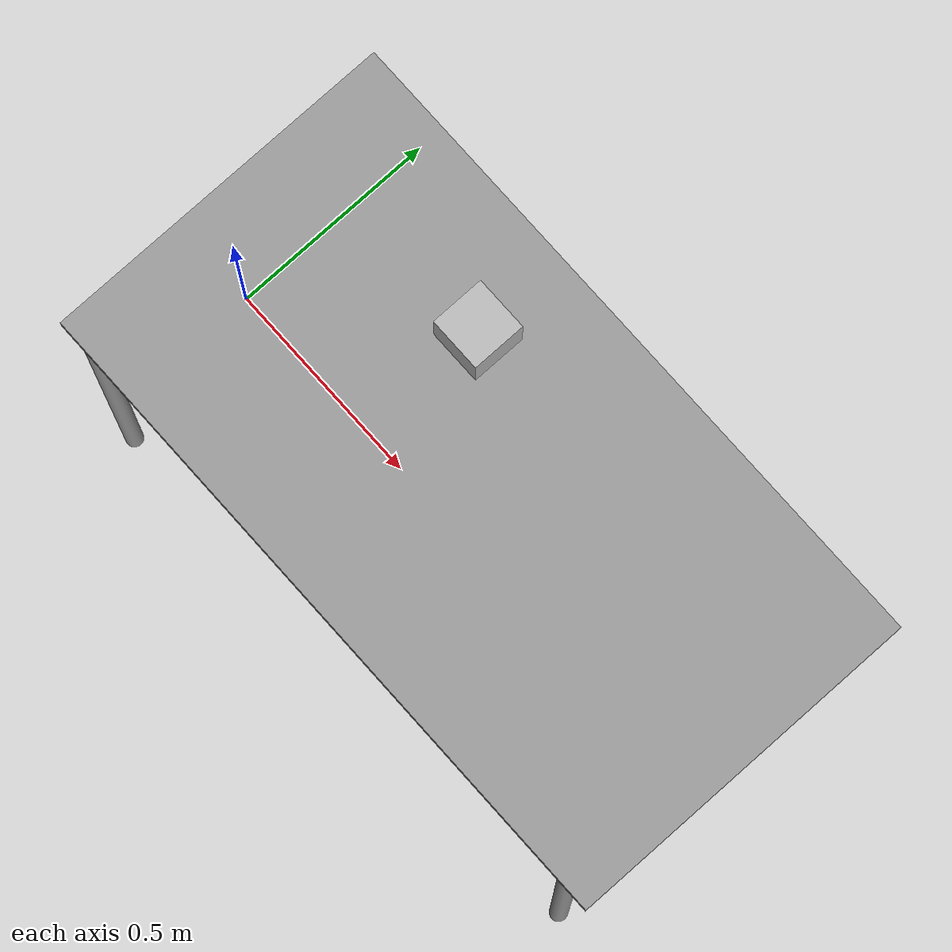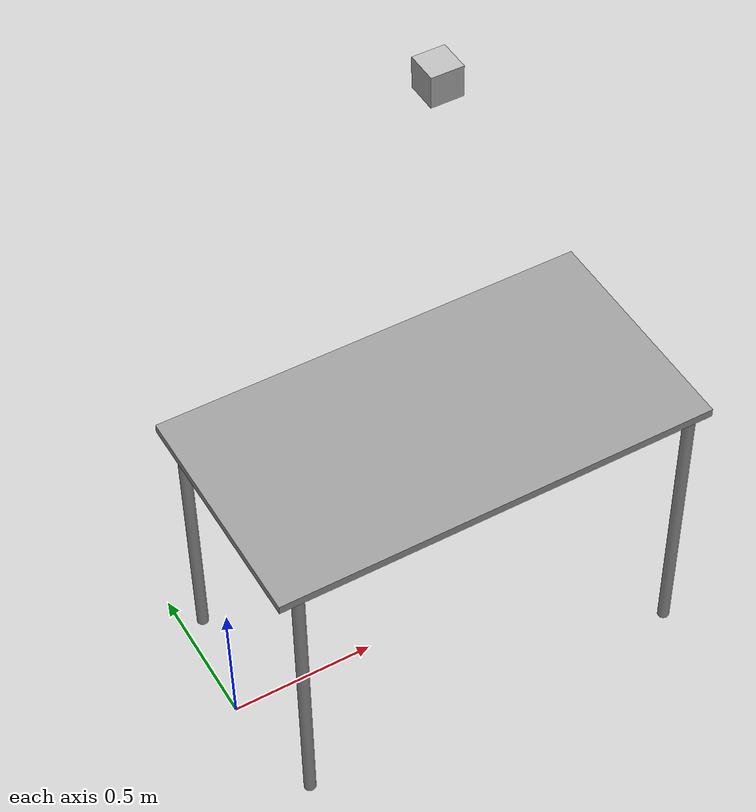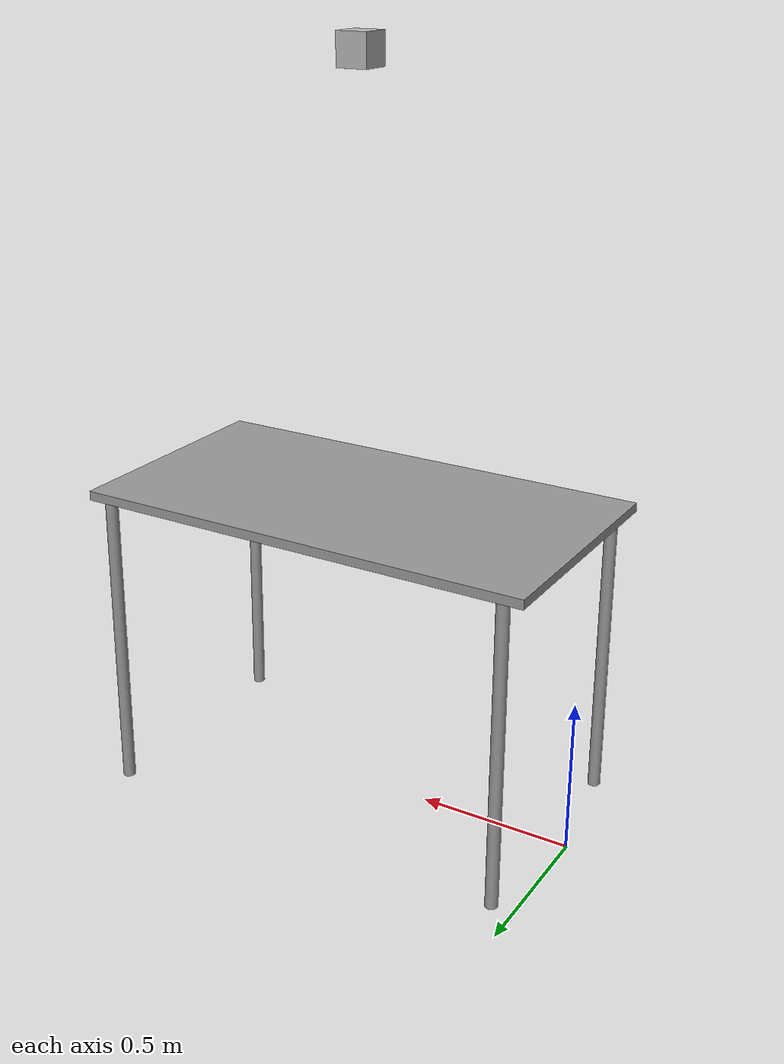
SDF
<sdf version="1.5">
 <world name="default">
  <scene>
   <ambient>0.4 0.4 0.4 1</ambient>
   <background>0.700000 0.700000 0.700000 1.000000</background>
   <shadows>0</shadows>
  </scene>
  <physics type="ode">
   <gravity>0.000000 0.000000 -9.81</gravity>
   <magnetic_field>6e-06 2.3e-05 -4.2e-05</magnetic_field>
   <atmosphere type="adiabatic"/>
   <ode>
    <solver>
     <type>world</type>
     <iters>1000</iters>
     <precon_iters>0</precon_iters>
     <sor>1.000000</sor>
     <use_dynamic_moi_rescaling>false</use_dynamic_moi_rescaling>
    </solver>
    <constraints>
     <cfm>0.000010</cfm>
     <erp>0.200000</erp>
     <contact_max_correcting_vel>50.000000</contact_max_correcting_vel>
     <contact_surface_layer>0.001000</contact_surface_layer>
    </constraints>
   </ode>
   <max_step_size>0.001</max_step_size>
   <real_time_factor>1</real_time_factor>
   <real_time_update_rate>1000</real_time_update_rate>
  </physics>
  <include><uri>model://sun</uri></include>
  <model name="gplane">
   <link name="plane">
    <collision name="plane">
     <geometry><plane><normal>0.000000 0.000000 1.000000</normal></plane></geometry>
     <surface>
      <friction>
       <ode>
        <mu>50.000000</mu>
        <mu2>50.000000</mu2>
        <fdir1>0.000000 0.000000 0.000000</fdir1>
        <slip1>0.000000</slip1>
        <slip2>0.000000</slip2>
       </ode>
      </friction>
      <bounce>
       <restitution_coefficient>0.000000</restitution_coefficient>
       <threshold>100000.000000</threshold>
      </bounce>
      <contact>
       <ode>
        <soft_cfm>0.000000</soft_cfm>
        <soft_erp>0.200000</soft_erp>
        <kp>1000000000.000000</kp>
        <kd>1.000000</kd>
        <max_vel>100.000000</max_vel>
        <min_depth>0.001000</min_depth>
       </ode>
      </contact>
     </surface>
     <laser_retro>0.000000</laser_retro>
    </collision>
   </link>
   <static>1</static>
  </model>
  <include>
   <name>table1</name>
   <uri>model://Table</uri>
   <pose>0.750000 0.000000 0.000000 0.000000 -0.000000 0.000000</pose>
  </include>
  <model name="camera">
   <static>1</static>
   <pose>0.75 0 2.35 0 +1.5708 0</pose>
   <link name="camera_link">
    <inertial>
     <mass>0.1</mass>
     <inertia>
      <ixx>0.000166667</ixx>
      <iyy>0.000166667</iyy>
      <izz>0.000166667</izz>
      <ixy>0</ixy>
      <ixz>0</ixz>
      <iyz>0</iyz>
     </inertia>
    </inertial>
    <collision name="collision"><geometry><box><size>0.1 0.1 0.1</size></box></geometry></collision>
    <visual name="visual"><geometry><box><size>0.1 0.1 0.1</size></box></geometry></visual>
    <sensor name="camera" type="camera">
     <camera>
      <horizontal_fov>1.047</horizontal_fov>
      <image><width>800</width><height>800</height></image>
      <clip><near>0.1</near><far>100</far></clip>
     </camera>
     <always_on>1</always_on>
     <update_rate>30</update_rate>
     <visualize>1</visualize>
     <plugin name="camera_controller" filename="libgazebo_ros_camera.so">
      <alwaysOn>1</alwaysOn>
      <updateRate>10</updateRate>
      <cameraName>camera</cameraName>
      <imageTopicName>image_raw</imageTopicName>
      <cameraInfoTopicName>camera_info</cameraInfoTopicName>
      <frameName>camera_link</frameName>
      <hackBaseline>0.0</hackBaseline>
      <distortionK1>0.0</distortionK1>
      <distortionK2>0.0</distortionK2>
      <distortionK3>0.0</distortionK3>
      <distortionT1>0.0</distortionT1>
      <distortionT2>0.0</distortionT2>
      <CxPrime>0</CxPrime>
      <Cx>0.0</Cx>
      <Cy>0.0</Cy>
      <focalLength>0.0</focalLength>
     </plugin>
    </sensor>
   </link>
  </model>
 </world>
</sdf>

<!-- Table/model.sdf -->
<sdf version="1.5">
  <model name="Table">
    <static>true</static>
    <link name="link">
      <collision name="surface">
        <pose>0 0 1.0 0 0 0</pose>
        <geometry>
          <box>
            <size>1.5 0.8 0.03</size>
          </box>
        </geometry>
        <surface>
          <friction>
            <ode>
              <mu>0.6</mu>
              <mu2>0.6</mu2>
              <fdir1>0 0 0</fdir1>
              <slip1>0.01</slip1>
              <slip2>0.01</slip2>
            </ode>
          </friction>
        </surface>
      </collision>
      <visual name="visual1">
        <pose>0 0 1.0 0 0 0</pose>
        <geometry>
          <box>
            <size>1.5 0.8 0.03</size>
          </box>
        </geometry>
        <material>
          <diffuse>1.0 1.0 1.0</diffuse>
          <script>
            <uri>file://media/materials/scripts/gazebo.material</uri>
            <name>Gazebo/Grey</name>
          </script>
           <!-- PBR for Ignition, material scripts for gazebo classic -->
          <pbr>
            <metal>
              <albedo_map>model://Table/Table_Diffuse.jpg</albedo_map>
            </metal>
          </pbr>
        </material>
      </visual>
      <collision name="front_left_leg">
        <pose>0.68 0.38 0.5 0 0 0</pose>
        <geometry>
          <cylinder>
            <radius>0.02</radius>
            <length>1.0</length>
          </cylinder>
        </geometry>
      </collision>
      <visual name="front_left_leg">
        <pose>0.68 0.38 0.5 0 0 0</pose>
        <geometry>
          <cylinder>
            <radius>0.02</radius>
            <length>1.0</length>
          </cylinder>
        </geometry>
        <material>
          <diffuse>0.5 0.5 0.5</diffuse>
          <script>
            <uri>file://media/materials/scripts/gazebo.material</uri>
            <name>Gazebo/Grey</name>
          </script>
        </material>
      </visual>
      <collision name="front_right_leg">
        <pose>0.68 -0.38 0.5 0 0 0</pose>
        <geometry>
          <cylinder>
            <radius>0.02</radius>
            <length>1.0</length>
          </cylinder>
        </geometry>
      </collision>
      <visual name="front_right_leg">
        <pose>0.68 -0.38 0.5 0 0 0</pose>
        <geometry>
          <cylinder>
            <radius>0.02</radius>
            <length>1.0</length>
          </cylinder>
        </geometry>
        <material>
          <diffuse>0.5 0.5 0.5</diffuse>
          <script>
            <uri>file://media/materials/scripts/gazebo.material</uri>
            <name>Gazebo/Grey</name>
          </script>
        </material>
      </visual>
      <collision name="back_right_leg">
        <pose>-0.68 -0.38 0.5 0 0 0</pose>
        <geometry>
          <cylinder>
            <radius>0.02</radius>
            <length>1.0</length>
          </cylinder>
        </geometry>
      </collision>
      <visual name="back_right_leg">
        <pose>-0.68 -0.38 0.5 0 0 0</pose>
        <geometry>
          <cylinder>
            <radius>0.02</radius>
            <length>1.0</length>
          </cylinder>
        </geometry>
        <material>
          <diffuse>0.5 0.5 0.5</diffuse>
          <script>
            <uri>file://media/materials/scripts/gazebo.material</uri>
            <name>Gazebo/Grey</name>
          </script>
        </material>
      </visual>
      <collision name="back_left_leg">
        <pose>-0.68 0.38 0.5 0 0 0</pose>
        <geometry>
          <cylinder>
            <radius>0.02</radius>
            <length>1.0</length>
          </cylinder>
        </geometry>
      </collision>
      <visual name="back_left_leg">
        <pose>-0.68 0.38 0.5 0 0 0</pose>
        <geometry>
          <cylinder>
            <radius>0.02</radius>
            <length>1.0</length>
          </cylinder>
        </geometry>
        <material>
          <diffuse>0.5 0.5 0.5</diffuse>
          <script>
            <uri>file://media/materials/scripts/gazebo.material</uri>
            <name>Gazebo/Grey</name>
          </script>
        </material>
      </visual>

      <!--inertial-->
      <!-- end inertial -->

    </link>
  </model>
</sdf>
